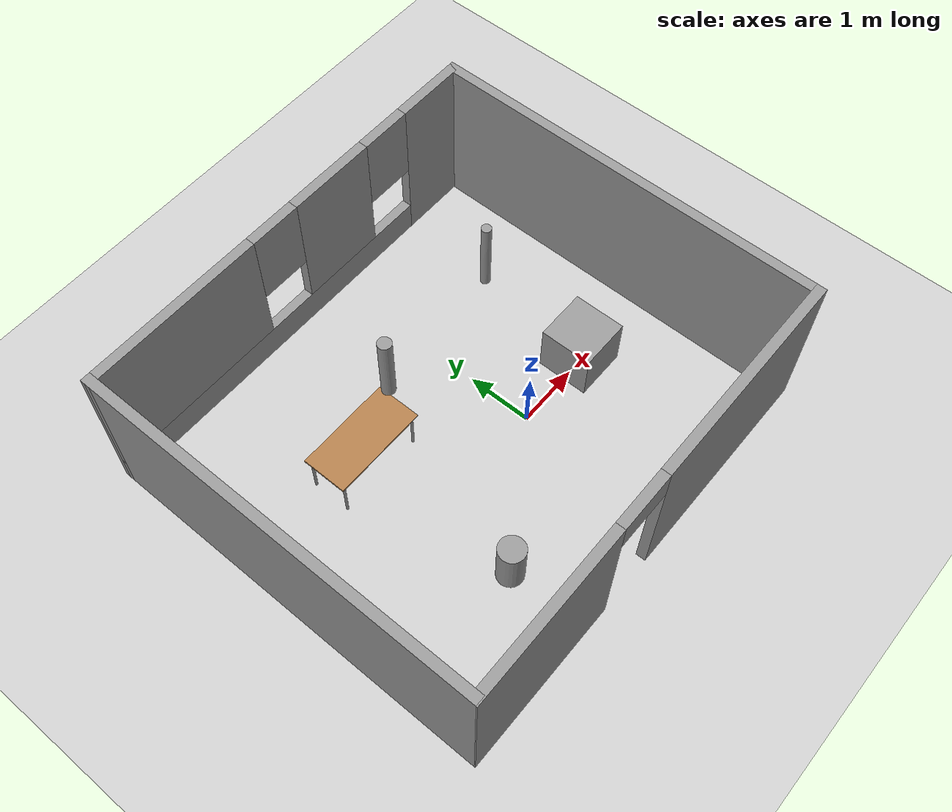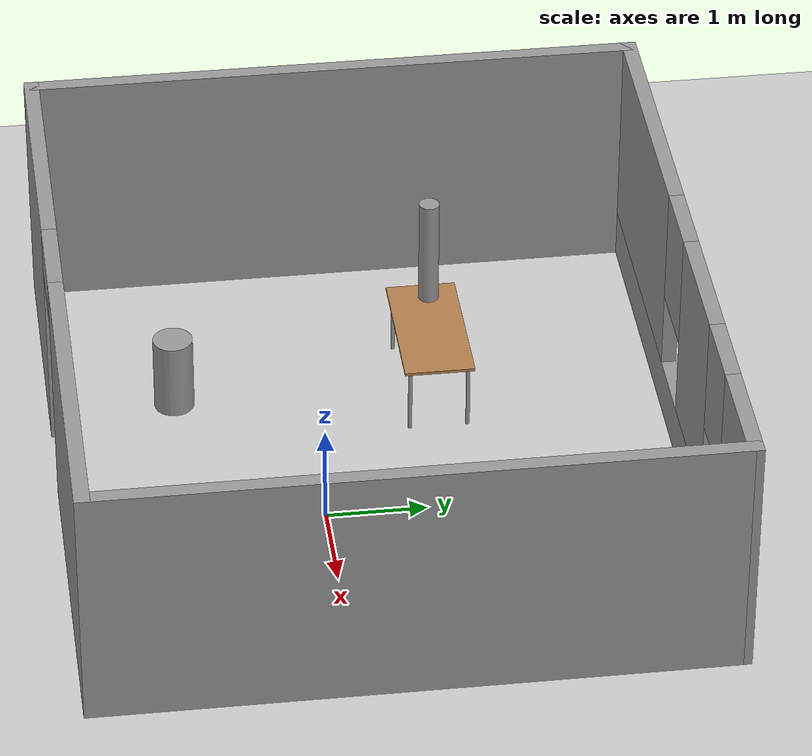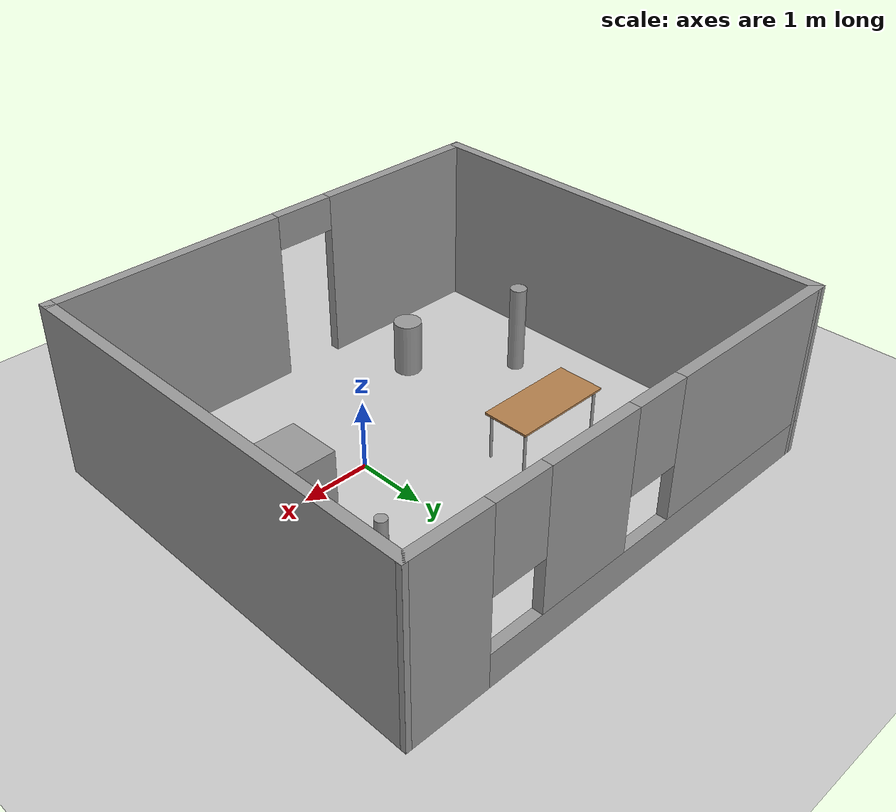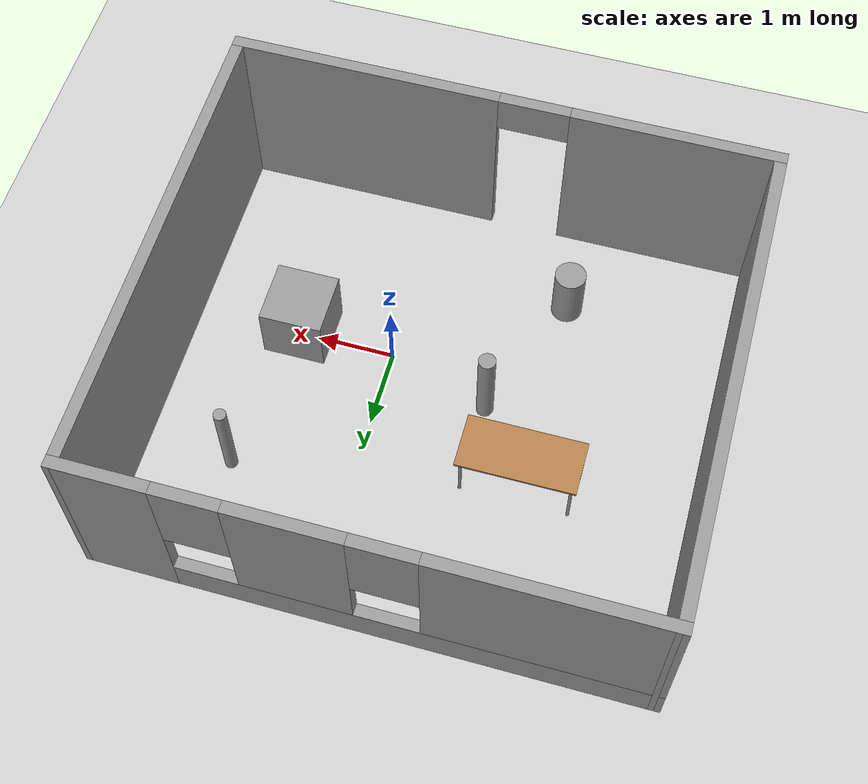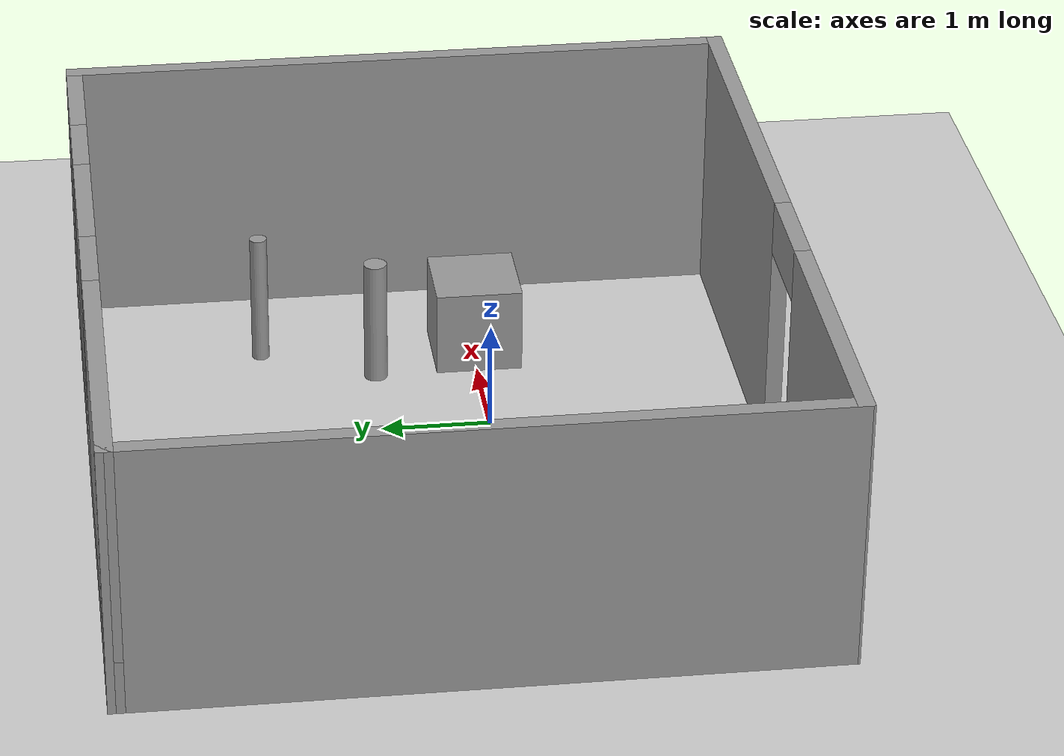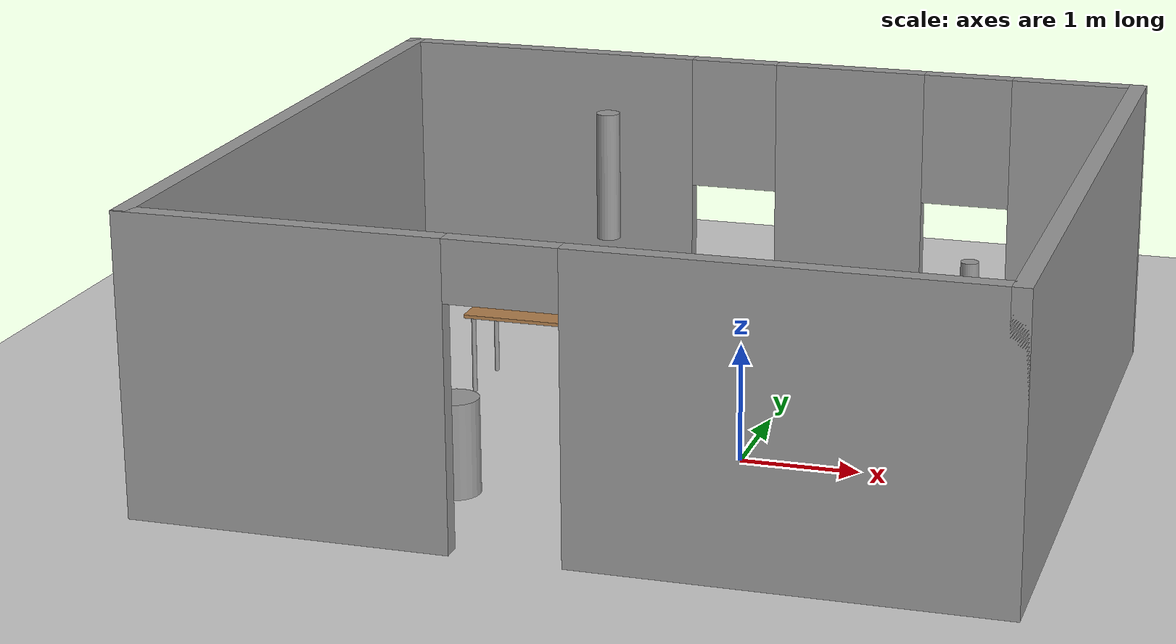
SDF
<sdf version="1.5">
 <world name="default">
  <include><uri>model://sun</uri></include>
  <include><uri>model://ground_plane</uri></include>
  <include><uri>model://asphalt_plane</uri></include>
  <plugin name="ros_interface_plugin" filename="librotors_gazebo_ros_interface_plugin.so"/>
  <physics name="default_physics" default="0" type="ode">
   <gravity>0 0 -9.8066</gravity>
   <ode>
    <solver>
     <type>quick</type>
     <iters>10</iters>
     <sor>1.3</sor>
     <use_dynamic_moi_rescaling>1</use_dynamic_moi_rescaling>
    </solver>
    <constraints>
     <cfm>0</cfm>
     <erp>0.2</erp>
     <contact_max_correcting_vel>100</contact_max_correcting_vel>
     <contact_surface_layer>0.001</contact_surface_layer>
    </constraints>
   </ode>
   <max_step_size>0.002</max_step_size>
   <real_time_factor>1</real_time_factor>
   <real_time_update_rate>500</real_time_update_rate>
   <magnetic_field>6e-06 2.3e-05 -4.2e-05</magnetic_field>
  </physics>
  <model name="room_world">
   <pose>-0.755 0.570109 0 0 -0 0</pose>
   <link name="Wall_0">
    <collision name="Wall_0_Collision">
     <geometry><box><size>6.25 0.15 2.5</size></box></geometry>
     <pose>0 0 1.25 0 -0 0</pose>
    </collision>
    <visual name="Wall_0_Visual">
     <pose>0 0 1.25 0 -0 0</pose>
     <geometry><box><size>6.25 0.15 2.5</size></box></geometry>
     <material>
      <script><uri>file://media/materials/scripts/gazebo.material</uri><name>Gazebo/Grey</name></script>
      <ambient>1 1 1 1</ambient>
     </material>
     <meta><layer>0</layer></meta>
    </visual>
    <pose>-3.425 0.009891 0 0 -0 -1.5708</pose>
   </link>
   <link name="Wall_1">
    <pose>0 -3.06011 0 0 -0 0</pose>
    <visual name="Wall_1_Visual_0">
     <pose>-2.1725 0 1.25 0 -0 0</pose>
     <geometry><box><size>2.655 0.15 2.5</size></box></geometry>
     <material>
      <script><uri>file://media/materials/scripts/gazebo.material</uri><name>Gazebo/Grey</name></script>
      <ambient>1 1 1 1</ambient>
     </material>
     <meta><layer>0</layer></meta>
    </visual>
    <collision name="Wall_1_Collision_0">
     <geometry><box><size>2.655 0.15 2.5</size></box></geometry>
     <pose>-2.1725 0 1.25 0 -0 0</pose>
    </collision>
    <visual name="Wall_1_Visual_1">
     <pose>1.7775 0 1.25 0 -0 0</pose>
     <geometry><box><size>3.445 0.15 2.5</size></box></geometry>
     <material>
      <script><uri>file://media/materials/scripts/gazebo.material</uri><name>Gazebo/Grey</name></script>
      <ambient>1 1 1 1</ambient>
     </material>
     <meta><layer>0</layer></meta>
    </visual>
    <collision name="Wall_1_Collision_1">
     <geometry><box><size>3.445 0.15 2.5</size></box></geometry>
     <pose>1.7775 0 1.25 0 -0 0</pose>
    </collision>
    <visual name="Wall_1_Visual_2">
     <pose>-0.395 0 2.25 0 -0 0</pose>
     <geometry><box><size>0.9 0.15 0.5</size></box></geometry>
     <material>
      <script><uri>file://media/materials/scripts/gazebo.material</uri><name>Gazebo/Grey</name></script>
      <ambient>1 1 1 1</ambient>
     </material>
     <meta><layer>0</layer></meta>
    </visual>
    <collision name="Wall_1_Collision_2">
     <geometry><box><size>0.9 0.15 0.5</size></box></geometry>
     <pose>-0.395 0 2.25 0 -0 0</pose>
    </collision>
   </link>
   <link name="Wall_2">
    <collision name="Wall_2_Collision">
     <geometry><box><size>6.25 0.15 2.5</size></box></geometry>
     <pose>0 0 1.25 0 -0 0</pose>
    </collision>
    <visual name="Wall_2_Visual">
     <pose>0 0 1.25 0 -0 0</pose>
     <geometry><box><size>6.25 0.15 2.5</size></box></geometry>
     <material>
      <script><uri>file://media/materials/scripts/gazebo.material</uri><name>Gazebo/Grey</name></script>
      <ambient>1 1 1 1</ambient>
     </material>
     <meta><layer>0</layer></meta>
    </visual>
    <pose>3.425 -0.010109 0 0 -0 1.5708</pose>
   </link>
   <link name="Wall_3">
    <pose>0 3.04989 0 0 -0 3.13867</pose>
    <visual name="Wall_3_Visual_0">
     <pose>-2.9072 0 1.25 0 -0 0</pose>
     <geometry><box><size>1.18564 0.15 2.5</size></box></geometry>
     <material>
      <script><uri>file://media/materials/scripts/gazebo.material</uri><name>Gazebo/Grey</name></script>
      <ambient>1 1 1 1</ambient>
     </material>
     <meta><layer>0</layer></meta>
    </visual>
    <collision name="Wall_3_Collision_0">
     <geometry><box><size>1.18564 0.15 2.5</size></box></geometry>
     <pose>-2.9072 0 1.25 0 -0 0</pose>
    </collision>
    <visual name="Wall_3_Visual_1">
     <pose>0.592818 0 0.25 0 -0 0</pose>
     <geometry><box><size>5.81439 0.15 0.5</size></box></geometry>
     <material>
      <script><uri>file://media/materials/scripts/gazebo.material</uri><name>Gazebo/Grey</name></script>
      <ambient>1 1 1 1</ambient>
     </material>
     <meta><layer>0</layer></meta>
    </visual>
    <collision name="Wall_3_Collision_1">
     <geometry><box><size>5.81439 0.15 0.5</size></box></geometry>
     <pose>0.592818 0 0.25 0 -0 0</pose>
    </collision>
    <visual name="Wall_3_Visual_2">
     <pose>-0.824617 0 1.5 0 -0 0</pose>
     <geometry><box><size>1.37952 0.15 2</size></box></geometry>
     <material>
      <script><uri>file://media/materials/scripts/gazebo.material</uri><name>Gazebo/Grey</name></script>
      <ambient>1 1 1 1</ambient>
     </material>
     <meta><layer>0</layer></meta>
    </visual>
    <collision name="Wall_3_Collision_2">
     <geometry><box><size>1.37952 0.15 2</size></box></geometry>
     <pose>-0.824617 0 1.5 0 -0 0</pose>
    </collision>
    <visual name="Wall_3_Visual_3">
     <pose>2.08258 0 1.5 0 -0 0</pose>
     <geometry><box><size>2.83487 0.15 2</size></box></geometry>
     <material>
      <script><uri>file://media/materials/scripts/gazebo.material</uri><name>Gazebo/Grey</name></script>
      <ambient>1 1 1 1</ambient>
     </material>
     <meta><layer>0</layer></meta>
    </visual>
    <collision name="Wall_3_Collision_3">
     <geometry><box><size>2.83487 0.15 2</size></box></geometry>
     <pose>2.08258 0 1.5 0 -0 0</pose>
    </collision>
    <visual name="Wall_3_Visual_4">
     <pose>-1.91438 0 1.9 0 -0 0</pose>
     <geometry><box><size>0.8 0.15 1.2</size></box></geometry>
     <material>
      <script><uri>file://media/materials/scripts/gazebo.material</uri><name>Gazebo/Grey</name></script>
      <ambient>1 1 1 1</ambient>
     </material>
     <meta><layer>0</layer></meta>
    </visual>
    <collision name="Wall_3_Collision_4">
     <geometry><box><size>0.8 0.15 1.2</size></box></geometry>
     <pose>-1.91438 0 1.9 0 -0 0</pose>
    </collision>
    <visual name="Wall_3_Visual_5">
     <pose>0.265145 0 1.9 0 -0 0</pose>
     <geometry><box><size>0.8 0.15 1.2</size></box></geometry>
     <material>
      <script><uri>file://media/materials/scripts/gazebo.material</uri><name>Gazebo/Grey</name></script>
      <ambient>1 1 1 1</ambient>
     </material>
     <meta><layer>0</layer></meta>
    </visual>
    <collision name="Wall_3_Collision_5">
     <geometry><box><size>0.8 0.15 1.2</size></box></geometry>
     <pose>0.265145 0 1.9 0 -0 0</pose>
    </collision>
   </link>
   <static>1</static>
  </model>
  <model name="table">
   <static>true</static>
   <link name="link">
    <collision name="surface">
     <pose>-2 1.29 0.7 0 0 0</pose>
     <geometry><box><size>1.5 0.7 0.03</size></box></geometry>
     <surface><friction><ode><mu>0.6</mu><mu2>0.6</mu2></ode></friction></surface>
    </collision>
    <visual name="visual1">
     <pose>-2 1.29 0.7 0 0 0</pose>
     <geometry><box><size>1.5 0.7 0.03</size></box></geometry>
     <material>
      <script><uri>file://media/materials/scripts/gazebo.material</uri><name>Gazebo/Wood</name></script>
     </material>
    </visual>
    <collision name="front_left_leg">
     <pose>-1.32 1.58 0.35 0 0 0</pose>
     <geometry><cylinder><radius>0.02</radius><length>0.7</length></cylinder></geometry>
    </collision>
    <visual name="front_left_leg">
     <pose>-1.32 1.58 0.35 0 0 0</pose>
     <geometry><cylinder><radius>0.02</radius><length>0.7</length></cylinder></geometry>
     <material>
      <script><uri>file://media/materials/scripts/gazebo.material</uri><name>Gazebo/Grey</name></script>
     </material>
    </visual>
    <collision name="front_right_leg">
     <pose>-1.32 1 0.35 0 0 0</pose>
     <geometry><cylinder><radius>0.02</radius><length>0.7</length></cylinder></geometry>
    </collision>
    <visual name="front_right_leg">
     <pose>-1.32 1 0.35 0 0 0</pose>
     <geometry><cylinder><radius>0.02</radius><length>0.7</length></cylinder></geometry>
     <material>
      <script><uri>file://media/materials/scripts/gazebo.material</uri><name>Gazebo/Grey</name></script>
     </material>
    </visual>
    <collision name="back_right_leg">
     <pose>-2.68 1 0.35 0 0 0</pose>
     <geometry><cylinder><radius>0.02</radius><length>0.7</length></cylinder></geometry>
    </collision>
    <visual name="back_right_leg">
     <pose>-2.68 1 0.35 0 0 0</pose>
     <geometry><cylinder><radius>0.02</radius><length>0.7</length></cylinder></geometry>
     <material>
      <script><uri>file://media/materials/scripts/gazebo.material</uri><name>Gazebo/Grey</name></script>
     </material>
    </visual>
    <collision name="back_left_leg">
     <pose>-2.68 1.58 0.35 0 0 0</pose>
     <geometry><cylinder><radius>0.02</radius><length>0.7</length></cylinder></geometry>
    </collision>
    <visual name="back_left_leg">
     <pose>-2.68 1.58 0.35 0 0 0</pose>
     <geometry><cylinder><radius>0.02</radius><length>0.7</length></cylinder></geometry>
     <material>
      <script><uri>file://media/materials/scripts/gazebo.material</uri><name>Gazebo/Grey</name></script>
     </material>
    </visual>
   </link>
  </model>
  <model name="unit_box">
   <static>1</static>
   <pose>1.2 0 0.5 0 0 0</pose>
   <link name="link">
    <inertial>
     <mass>1</mass>
     <inertia>
      <ixx>0.166667</ixx>
      <ixy>0</ixy>
      <ixz>0</ixz>
      <iyy>0.166667</iyy>
      <iyz>0</iyz>
      <izz>0.166667</izz>
     </inertia>
     <pose>1 2 0.5 0 0 0</pose>
    </inertial>
    <collision name="collision"><geometry><box><size>0.8 0.8 0.8</size></box></geometry></collision>
    <visual name="visual">
     <geometry><box><size>0.8 0.8 0.8</size></box></geometry>
     <material>
      <script><name>Gazebo/Grey</name><uri>file://media/materials/scripts/gazebo.material</uri></script>
     </material>
    </visual>
   </link>
  </model>
  <model name="unit_cylinder">
   <link name="link">
    <inertial>
     <mass>1.0</mass>
     <inertia>
      <ixx>0.164358</ixx>
      <ixy>0</ixy>
      <ixz>0</ixz>
      <iyy>0.164358</iyy>
      <iyz>0</iyz>
      <izz>0.00205</izz>
     </inertia>
    </inertial>
    <visual name="visual">
     <geometry><cylinder><radius>0.1</radius><length>1.1</length></cylinder></geometry>
     <material>
      <script><name>Gazebo/Grey</name><uri>file://media/materials/scripts/gazebo.material</uri></script>
      <shader type="vertex"><normal_map>__default__</normal_map></shader>
      <ambient>0.9 0.9 0.9 1</ambient>
      <diffuse>0.7 0.7 0.7 1</diffuse>
      <specular>0.01 0.01 0.01 1</specular>
      <emissive>0 0 0 1</emissive>
     </material>
    </visual>
    <collision name="collision">
     <geometry><cylinder><radius>0.1</radius><length>1.1</length></cylinder></geometry>
     <surface>
      <friction>
       <ode><mu>1</mu><mu2>1</mu2><fdir1>0 0 0</fdir1><slip1>0</slip1><slip2>0</slip2></ode>
       <torsional>
        <coefficient>1</coefficient>
        <patch_radius>0</patch_radius>
        <surface_radius>0</surface_radius>
        <use_patch_radius>1</use_patch_radius>
        <ode><slip>0</slip></ode>
       </torsional>
      </friction>
      <bounce><restitution_coefficient>0</restitution_coefficient><threshold>1e+06</threshold></bounce>
      <contact>
       <collide_without_contact>0</collide_without_contact>
       <collide_without_contact_bitmask>1</collide_without_contact_bitmask>
       <collide_bitmask>1</collide_bitmask>
       <ode>
        <soft_cfm>0</soft_cfm>
        <soft_erp>0.2</soft_erp>
        <kp>1e+13</kp>
        <kd>1</kd>
        <max_vel>0.1</max_vel>
        <min_depth>0</min_depth>
       </ode>
       <bullet>
        <split_impulse>1</split_impulse>
        <split_impulse_penetration_threshold>-0.01</split_impulse_penetration_threshold>
        <soft_cfm>0</soft_cfm>
        <soft_erp>0.2</soft_erp>
        <kp>1e+13</kp>
        <kd>1</kd>
       </bullet>
      </contact>
     </surface>
    </collision>
   </link>
   <static>0</static>
   <allow_auto_disable>0</allow_auto_disable>
   <pose>-1.5 1.2 2 0 0 0</pose>
  </model>
  <model name="unit_cylinder">
   <link name="link">
    <inertial>
     <mass>1.0</mass>
     <inertia>
      <ixx>0.164358</ixx>
      <ixy>0</ixy>
      <ixz>0</ixz>
      <iyy>0.164358</iyy>
      <iyz>0</iyz>
      <izz>0.00205</izz>
     </inertia>
    </inertial>
    <visual name="visual">
     <geometry><cylinder><radius>0.2</radius><length>0.8</length></cylinder></geometry>
     <material>
      <script><name>Gazebo/Grey</name><uri>file://media/materials/scripts/gazebo.material</uri></script>
      <shader type="vertex"><normal_map>__default__</normal_map></shader>
      <ambient>0.9 0.9 0.9 1</ambient>
      <diffuse>0.7 0.7 0.7 1</diffuse>
      <specular>0.01 0.01 0.01 1</specular>
      <emissive>0 0 0 1</emissive>
     </material>
    </visual>
    <collision name="collision">
     <geometry><cylinder><radius>0.2</radius><length>0.8</length></cylinder></geometry>
     <surface>
      <friction>
       <ode><mu>1</mu><mu2>1</mu2><fdir1>0 0 0</fdir1><slip1>0</slip1><slip2>0</slip2></ode>
       <torsional>
        <coefficient>1</coefficient>
        <patch_radius>0</patch_radius>
        <surface_radius>0</surface_radius>
        <use_patch_radius>1</use_patch_radius>
        <ode><slip>0</slip></ode>
       </torsional>
      </friction>
      <bounce><restitution_coefficient>0</restitution_coefficient><threshold>1e+06</threshold></bounce>
      <contact>
       <collide_without_contact>0</collide_without_contact>
       <collide_without_contact_bitmask>1</collide_without_contact_bitmask>
       <collide_bitmask>1</collide_bitmask>
       <ode>
        <soft_cfm>0</soft_cfm>
        <soft_erp>0.2</soft_erp>
        <kp>1e+13</kp>
        <kd>1</kd>
        <max_vel>0.1</max_vel>
        <min_depth>0</min_depth>
       </ode>
       <bullet>
        <split_impulse>1</split_impulse>
        <split_impulse_penetration_threshold>-0.01</split_impulse_penetration_threshold>
        <soft_cfm>0</soft_cfm>
        <soft_erp>0.2</soft_erp>
        <kp>1e+13</kp>
        <kd>1</kd>
       </bullet>
      </contact>
     </surface>
    </collision>
   </link>
   <static>0</static>
   <allow_auto_disable>0</allow_auto_disable>
   <pose>-2.0 -1.3 0.4 0 0 0</pose>
  </model>
  <model name="unit_cylinder">
   <link name="link">
    <inertial>
     <mass>1.0</mass>
     <inertia>
      <ixx>0.164358</ixx>
      <ixy>0</ixy>
      <ixz>0</ixz>
      <iyy>0.164358</iyy>
      <iyz>0</iyz>
      <izz>0.00205</izz>
     </inertia>
    </inertial>
    <visual name="visual">
     <geometry><cylinder><radius>0.08</radius><length>1.5</length></cylinder></geometry>
     <material>
      <script><name>Gazebo/Grey</name><uri>file://media/materials/scripts/gazebo.material</uri></script>
      <shader type="vertex"><normal_map>__default__</normal_map></shader>
      <ambient>0.5 0.5 0.5 1</ambient>
      <diffuse>0.7 0.7 0.7 1</diffuse>
      <specular>0.01 0.01 0.01 1</specular>
      <emissive>0 0 0 1</emissive>
     </material>
    </visual>
    <collision name="collision">
     <geometry><cylinder><radius>0.08</radius><length>1.5</length></cylinder></geometry>
     <surface>
      <friction>
       <ode><mu>1</mu><mu2>1</mu2><fdir1>0 0 0</fdir1><slip1>0</slip1><slip2>0</slip2></ode>
       <torsional>
        <coefficient>1</coefficient>
        <patch_radius>0</patch_radius>
        <surface_radius>0</surface_radius>
        <use_patch_radius>1</use_patch_radius>
        <ode><slip>0</slip></ode>
       </torsional>
      </friction>
      <bounce><restitution_coefficient>0</restitution_coefficient><threshold>1e+06</threshold></bounce>
      <contact>
       <collide_without_contact>0</collide_without_contact>
       <collide_without_contact_bitmask>1</collide_without_contact_bitmask>
       <collide_bitmask>1</collide_bitmask>
       <ode>
        <soft_cfm>0</soft_cfm>
        <soft_erp>0.2</soft_erp>
        <kp>1e+13</kp>
        <kd>1</kd>
        <max_vel>0.1</max_vel>
        <min_depth>0</min_depth>
       </ode>
       <bullet>
        <split_impulse>1</split_impulse>
        <split_impulse_penetration_threshold>-0.01</split_impulse_penetration_threshold>
        <soft_cfm>0</soft_cfm>
        <soft_erp>0.2</soft_erp>
        <kp>1e+13</kp>
        <kd>1</kd>
       </bullet>
      </contact>
     </surface>
    </collision>
   </link>
   <static>0</static>
   <allow_auto_disable>0</allow_auto_disable>
   <pose>1.5 2.0 0.5 0 0 0</pose>
  </model>
  <plugin name="ros_link_attacher_plugin" filename="libgazebo_ros_link_attacher.so"/>
 </world>
</sdf>
